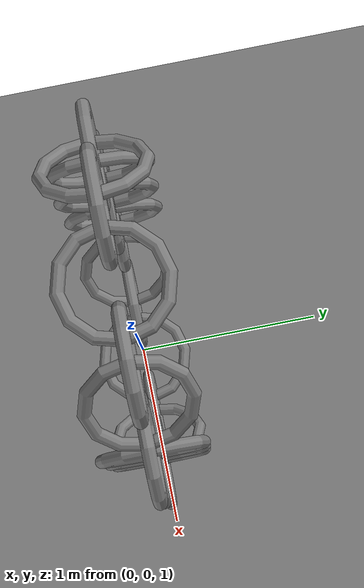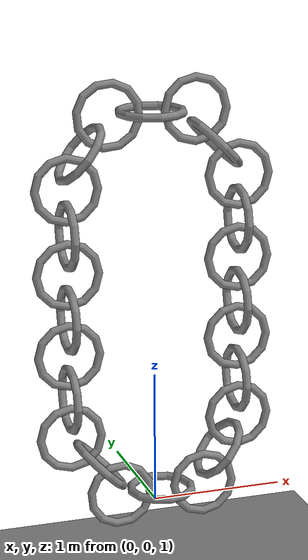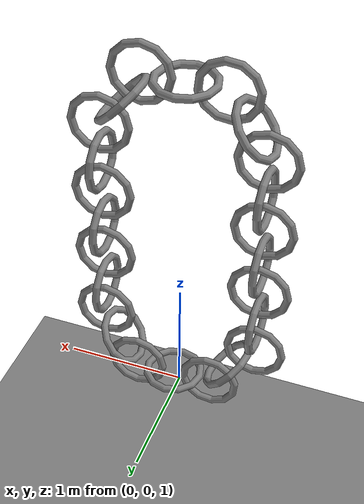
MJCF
<mujoco>
    <compiler convexhull="false"/>
    <asset>
        <mesh name="link1" file="assets\Torus_001.obj" />
        <mesh name="link2" file="assets\Torus_002.obj" />
        <mesh name="link3" file="assets\Torus_003.obj" />
        <mesh name="link4" file="assets\Torus_004.obj" />
        <mesh name="link5" file="assets\Torus_005.obj" />
        <mesh name="link6" file="assets\Torus_006.obj" />
        <mesh name="link7" file="assets\Torus_007.obj" />
        <mesh name="link8" file="assets\Torus_008.obj" />
        <mesh name="link9" file="assets\Torus_009.obj" />
        <mesh name="link10" file="assets\Torus_010.obj" />
        <mesh name="link11" file="assets\Torus_011.obj" />
        <mesh name="link12" file="assets\Torus_012.obj" />
        <mesh name="link13" file="assets\Torus_013.obj" />
        <mesh name="link14" file="assets\Torus_014.obj" />
        <mesh name="link15" file="assets\Torus_015.obj" />
        <mesh name="link16" file="assets\Torus_016.obj" />
        <mesh name="link17" file="assets\Torus_017.obj" />
        <mesh name="link18" file="assets\Torus_018.obj" />
        <mesh name="link19" file="assets\Torus_019.obj" />
        <mesh name="link20" file="assets\Torus_020.obj" />
        <mesh name="link21" file="assets\Torus_021.obj" />
        <mesh name="link22" file="assets\Torus_022.obj" />
        <mesh name="link23" file="assets\Torus_023.obj" />
        <mesh name="link24" file="assets\Torus_024.obj" />
    </asset>
    <worldbody>
        <light diffuse="1 1 1" pos="6 -6 6" dir="-1 1 -1"/>
        <geom type="plane" pos="0 0 0" size="2 2 0.01"/>
        <body>
            <joint type="free"/>
            <geom type="mesh" mesh="link1"/>
        </body>
        <body>
            <joint type="free"/>
            <geom type="mesh" mesh="link2"/>
        </body>
        <body>
            <joint type="free"/>
            <geom type="mesh" mesh="link3"/>
        </body>
        <body>
            <joint type="free"/>
            <geom type="mesh" mesh="link4"/>
        </body>
        <body>
            <joint type="free"/>
            <geom type="mesh" mesh="link5"/>
        </body>
        <body>
            <joint type="free"/>
            <geom type="mesh" mesh="link6"/>
        </body>
        <body>
            <joint type="free"/>
            <geom type="mesh" mesh="link7"/>
        </body>
        <body>
            <joint type="free"/>
            <geom type="mesh" mesh="link8"/>
        </body>
        <body>
            <joint type="free"/>
            <geom type="mesh" mesh="link9"/>
        </body>
        <body>
            <joint type="free"/>
            <geom type="mesh" mesh="link10"/>
        </body>
        <body>
            <joint type="free"/>
            <geom type="mesh" mesh="link11"/>
        </body>
        <body>
            <joint type="free"/>
            <geom type="mesh" mesh="link12"/>
        </body>
        <body>
            <joint type="free"/>
            <geom type="mesh" mesh="link13"/>
        </body>
        <body>
            <joint type="free"/>
            <geom type="mesh" mesh="link14"/>
        </body>
        <body>
            <joint type="free"/>
            <geom type="mesh" mesh="link15"/>
        </body>
        <body>
            <joint type="free"/>
            <geom type="mesh" mesh="link16"/>
        </body>
        <body>
            <joint type="free"/>
            <geom type="mesh" mesh="link17"/>
        </body>
        <body>
            <joint type="free"/>
            <geom type="mesh" mesh="link18"/>
        </body>
        <body>
            <joint type="free"/>
            <geom type="mesh" mesh="link19"/>
        </body>
        <body>
            <joint type="free"/>
            <geom type="mesh" mesh="link20"/>
        </body>
        <body>
            <joint type="free"/>
            <geom type="mesh" mesh="link21"/>
        </body>
        <body>
            <joint type="free"/>
            <geom type="mesh" mesh="link22"/>
        </body>
        <body>
            <joint type="free"/>
            <geom type="mesh" mesh="link23"/>
        </body>
        <body>
            <joint type="free"/>
            <geom type="mesh" mesh="link24"/>
        </body>
    </worldbody>
</mujoco>
